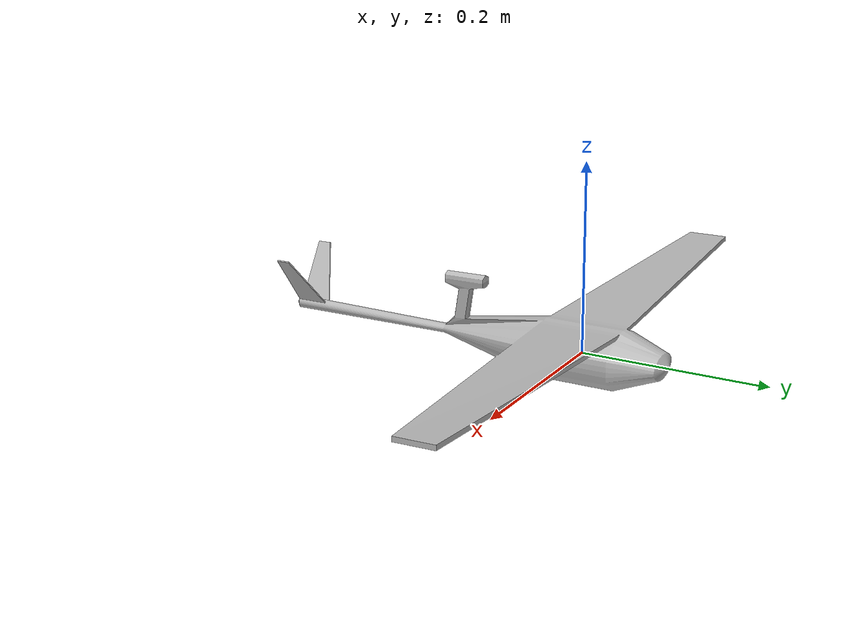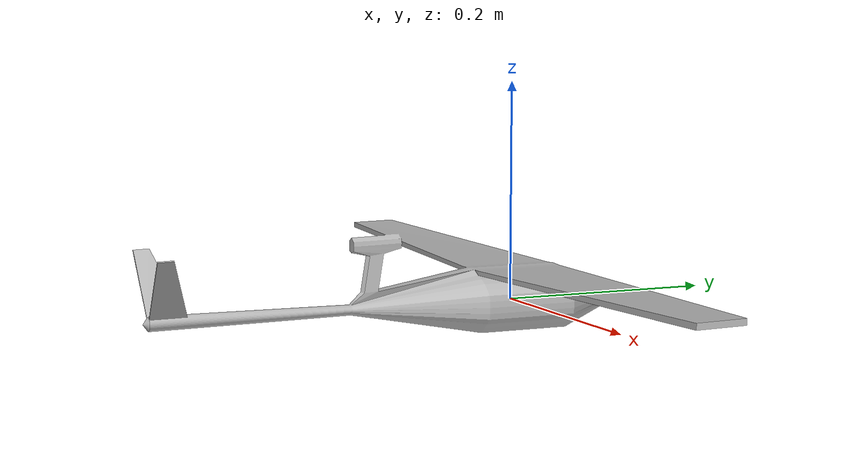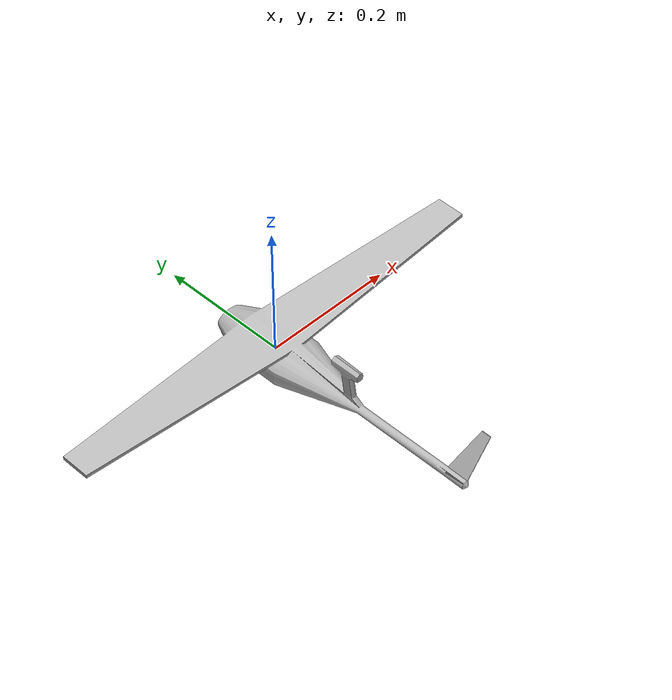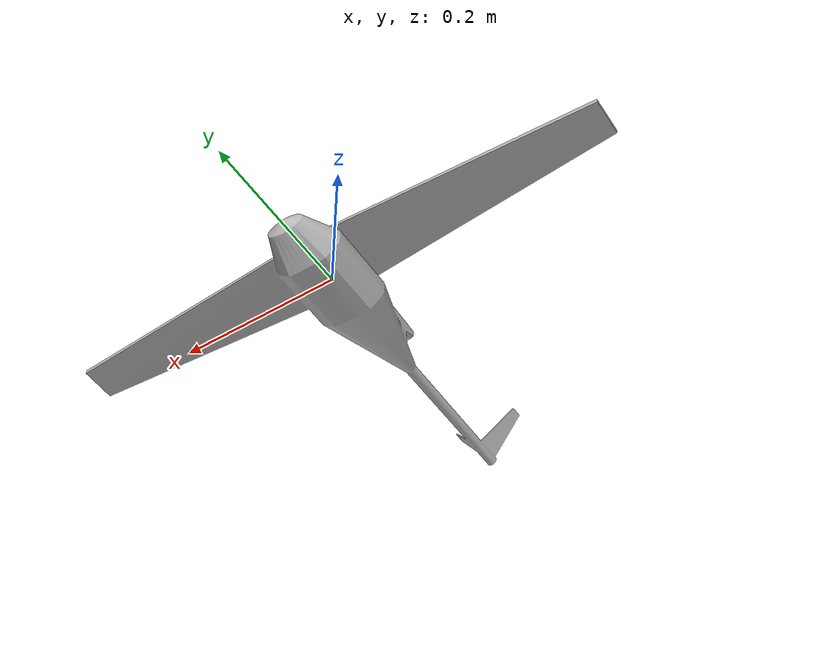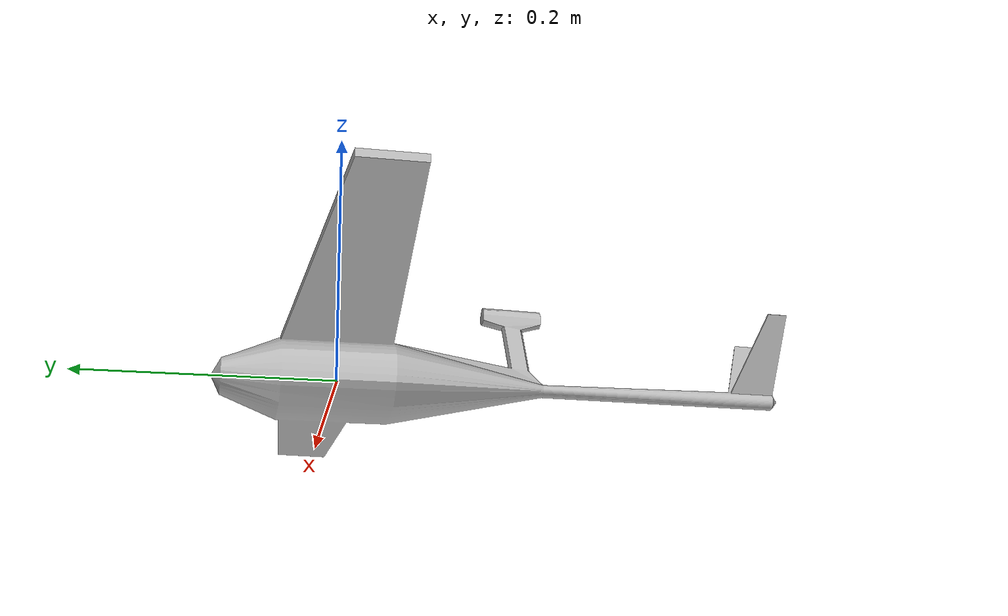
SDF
<?xml version="1.0" ?>
<sdf version="1.4">
    <model name="drone">
      <static>0</static>
      <link name="link">
        <inertial>
          <pose>0 0 0 0 0 0</pose>
          <mass>1.0</mass>
          <inertia>
            <ixx>0.0385483333333</ixx>
            <ixy>000000</ixy>
            <ixz>0.000000</ixz>
            <iyy>0.107087533333</iyy>
            <iyz>0.000000</iyz>
            <izz>0.1243542</izz>
          </inertia>
        </inertial>
        <collision name="collision">
          <pose>0 0 0 0 0 0</pose>
          <geometry>
            <mesh>
                <uri>model://drone/meshes/model.dae</uri>
                <scale>0.1 0.1 0.1</scale>
            </mesh>
          </geometry>
        </collision>
        <visual name="visual">
          <pose>0 0 0 0 0 0</pose>
          <geometry>
            <mesh>
                <uri>model://drone/meshes/model.dae</uri>
                <scale>0.1 0.1 0.1</scale>
            </mesh>
          </geometry>
        </visual>
      </link>
  <gazebo>
    <plugin name='simple_drone' filename='libplugin_drone.so'>
        <bodyName>base_link</bodyName>
        <imuTopic>/drone/imu</imuTopic>
        <rollpitchProportionalGain>10.0</rollpitchProportionalGain>
        <rollpitchDifferentialGain>5.0</rollpitchDifferentialGain>
        <rollpitchLimit>0.5</rollpitchLimit>
        <yawProportionalGain>2.0</yawProportionalGain>
        <yawDifferentialGain>1.0</yawDifferentialGain>
        <yawLimit>1.5</yawLimit>
        <velocityXYProportionalGain>5.0</velocityXYProportionalGain>
        <velocityXYDifferentialGain>2.3</velocityXYDifferentialGain>
        <velocityXYLimit>2</velocityXYLimit>
        <velocityZProportionalGain>5.0</velocityZProportionalGain>
        <velocityZDifferentialGain>1.0</velocityZDifferentialGain>
        <velocityZLimit>-1</velocityZLimit>
        <positionXYProportionalGain>1.1</positionXYProportionalGain>
        <positionXYDifferentialGain>0.0</positionXYDifferentialGain>
        <positionXYIntegralGain>0.0</positionXYIntegralGain>
        <positionXYLimit>5</positionXYLimit>
        <positionZProportionalGain>1.0</positionZProportionalGain>
        <positionZDifferentialGain>0.2</positionZDifferentialGain>
        <positionZLimit>-1</positionZLimit>
        <maxForce>30</maxForce>
        <motionSmallNoise>0.05</motionSmallNoise>
        <motionDriftNoise>0.03</motionDriftNoise>
        <motionDriftNoiseTime>5.0</motionDriftNoiseTime>
    </plugin>
  </gazebo>

    </model>
</sdf>
